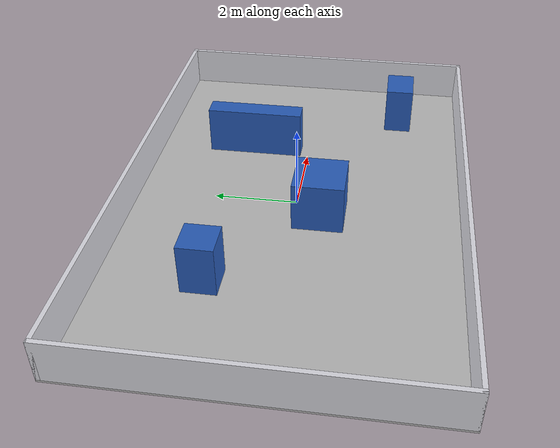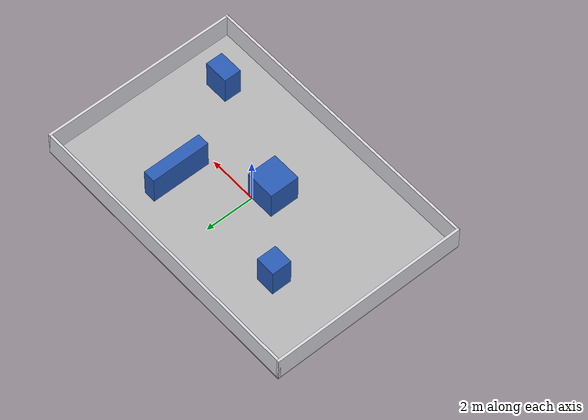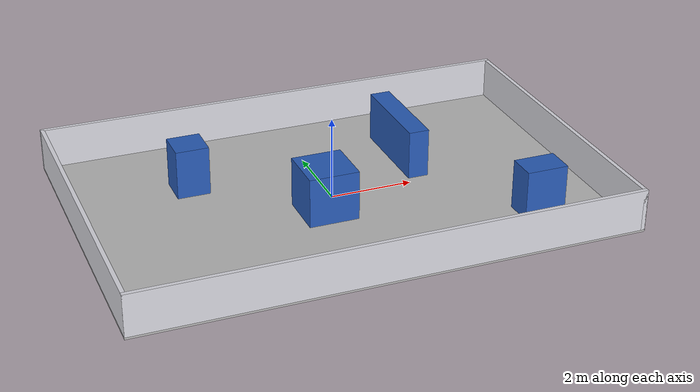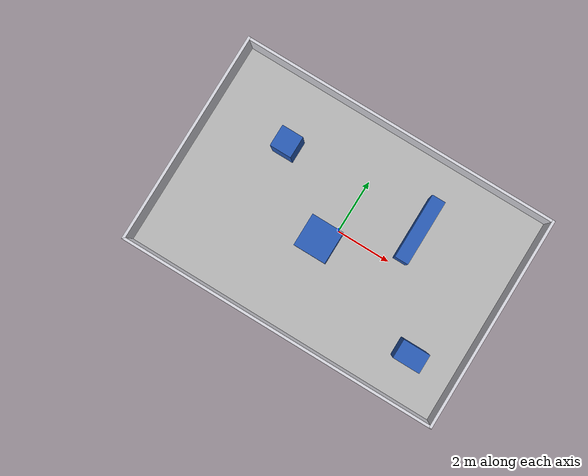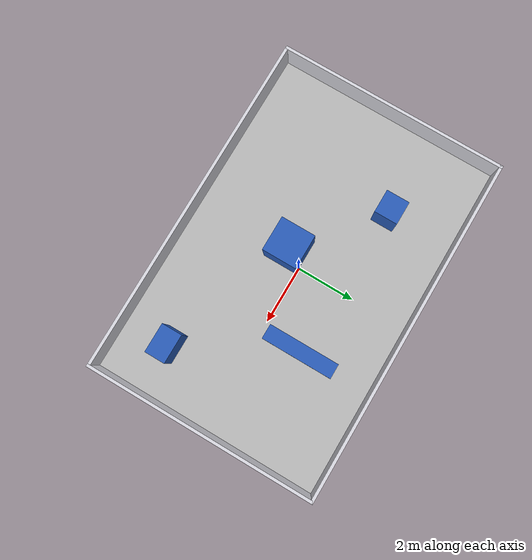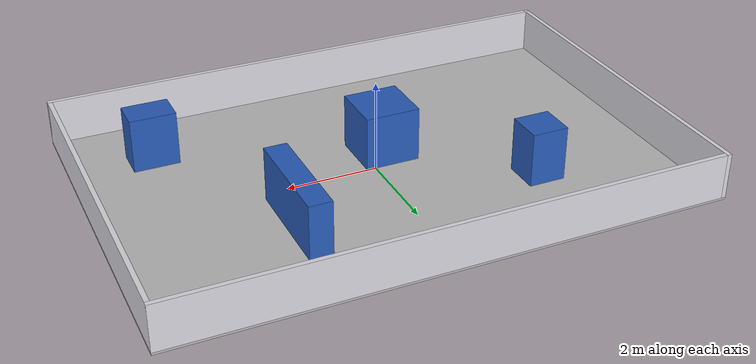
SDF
<?xml version='1.0' encoding='utf-8'?>
<sdf version="1.9">
  <world name="open_arena">
    <physics name="research_physics" type="ode">
      <max_step_size>0.003</max_step_size>
      <real_time_factor>1.0</real_time_factor>
    </physics>
    <plugin filename="gz-sim-physics-system" name="gz::sim::systems::Physics" />
    <plugin filename="gz-sim-user-commands-system" name="gz::sim::systems::UserCommands" />
    <plugin filename="gz-sim-scene-broadcaster-system" name="gz::sim::systems::SceneBroadcaster" />
    <plugin filename="gz-sim-imu-system" name="gz::sim::systems::Imu" />
    <plugin filename="gz-sim-sensors-system" name="gz::sim::systems::Sensors">
      <render_engine>ogre2</render_engine>
    </plugin>
    <scene>
      <ambient>0.8 0.8 0.8 1</ambient>
      <background>0.18 0.22 0.28 1</background>
      <shadows>false</shadows>
      <grid>true</grid>
    </scene>
    <light name="sun" type="directional">
      <pose>0 0 10 0 0 0</pose>
      <diffuse>0.9 0.9 0.9 1</diffuse>
      <specular>0.2 0.2 0.2 1</specular>
      <direction>-0.5 0.2 -1.0</direction>
    </light>
    <model name="open_arena_layout">
      <static>true</static>
      <link name="layout_link">
        <collision name="floor_collision">
          <pose>0 0 -0.025 0 0 0</pose>
          <geometry>
            <box>
              <size>12.0 8.0 0.05</size>
            </box>
          </geometry>
        </collision>
        <visual name="floor_visual">
          <pose>0 0 -0.025 0 0 0</pose>
          <geometry>
            <box>
              <size>12.0 8.0 0.05</size>
            </box>
          </geometry>
          <material>
            <ambient>0.72 0.72 0.72 1</ambient>
            <diffuse>0.72 0.72 0.72 1</diffuse>
          </material>
        </visual>
        <collision name="boundary_north">
          <pose>0.0 3.95 0.5 0 0 0</pose>
          <geometry>
            <box>
              <size>12.0 0.1 1.0</size>
            </box>
          </geometry>
        </collision>
        <visual name="boundary_north_visual">
          <pose>0.0 3.95 0.5 0 0 0</pose>
          <geometry>
            <box>
              <size>12.0 0.1 1.0</size>
            </box>
          </geometry>
          <material>
            <ambient>0.85 0.85 0.88 1</ambient>
            <diffuse>0.85 0.85 0.88 1</diffuse>
          </material>
        </visual>
        <collision name="boundary_south">
          <pose>0.0 -3.95 0.5 0 0 0</pose>
          <geometry>
            <box>
              <size>12.0 0.1 1.0</size>
            </box>
          </geometry>
        </collision>
        <visual name="boundary_south_visual">
          <pose>0.0 -3.95 0.5 0 0 0</pose>
          <geometry>
            <box>
              <size>12.0 0.1 1.0</size>
            </box>
          </geometry>
          <material>
            <ambient>0.85 0.85 0.88 1</ambient>
            <diffuse>0.85 0.85 0.88 1</diffuse>
          </material>
        </visual>
        <collision name="boundary_west">
          <pose>-5.95 0.0 0.5 0 0 0</pose>
          <geometry>
            <box>
              <size>0.1 8.0 1.0</size>
            </box>
          </geometry>
        </collision>
        <visual name="boundary_west_visual">
          <pose>-5.95 0.0 0.5 0 0 0</pose>
          <geometry>
            <box>
              <size>0.1 8.0 1.0</size>
            </box>
          </geometry>
          <material>
            <ambient>0.85 0.85 0.88 1</ambient>
            <diffuse>0.85 0.85 0.88 1</diffuse>
          </material>
        </visual>
        <collision name="boundary_east">
          <pose>5.95 0.0 0.5 0 0 0</pose>
          <geometry>
            <box>
              <size>0.1 8.0 1.0</size>
            </box>
          </geometry>
        </collision>
        <visual name="boundary_east_visual">
          <pose>5.95 0.0 0.5 0 0 0</pose>
          <geometry>
            <box>
              <size>0.1 8.0 1.0</size>
            </box>
          </geometry>
          <material>
            <ambient>0.85 0.85 0.88 1</ambient>
            <diffuse>0.85 0.85 0.88 1</diffuse>
          </material>
        </visual>
        <collision name="pillar_west">
          <pose>-3.0 1.6 0.6 0 0 0</pose>
          <geometry>
            <box>
              <size>0.8 0.8 1.2</size>
            </box>
          </geometry>
        </collision>
        <visual name="pillar_west_visual">
          <pose>-3.0 1.6 0.6 0 0 0</pose>
          <geometry>
            <box>
              <size>0.8 0.8 1.2</size>
            </box>
          </geometry>
          <material>
            <ambient>0.16 0.36 0.72 1</ambient>
            <diffuse>0.16 0.36 0.72 1</diffuse>
          </material>
        </visual>
        <collision name="block_center">
          <pose>-0.4 -0.6 0.6 0 0 0</pose>
          <geometry>
            <box>
              <size>1.2 1.2 1.2</size>
            </box>
          </geometry>
        </collision>
        <visual name="block_center_visual">
          <pose>-0.4 -0.6 0.6 0 0 0</pose>
          <geometry>
            <box>
              <size>1.2 1.2 1.2</size>
            </box>
          </geometry>
          <material>
            <ambient>0.16 0.36 0.72 1</ambient>
            <diffuse>0.16 0.36 0.72 1</diffuse>
          </material>
        </visual>
        <collision name="screen_east">
          <pose>2.3 1.4 0.6 0 0 0</pose>
          <geometry>
            <box>
              <size>0.5 2.4 1.2</size>
            </box>
          </geometry>
        </collision>
        <visual name="screen_east_visual">
          <pose>2.3 1.4 0.6 0 0 0</pose>
          <geometry>
            <box>
              <size>0.5 2.4 1.2</size>
            </box>
          </geometry>
          <material>
            <ambient>0.16 0.36 0.72 1</ambient>
            <diffuse>0.16 0.36 0.72 1</diffuse>
          </material>
        </visual>
        <collision name="block_southeast">
          <pose>4.2 -2.3 0.6 0 0 0</pose>
          <geometry>
            <box>
              <size>1.0 0.7 1.2</size>
            </box>
          </geometry>
        </collision>
        <visual name="block_southeast_visual">
          <pose>4.2 -2.3 0.6 0 0 0</pose>
          <geometry>
            <box>
              <size>1.0 0.7 1.2</size>
            </box>
          </geometry>
          <material>
            <ambient>0.16 0.36 0.72 1</ambient>
            <diffuse>0.16 0.36 0.72 1</diffuse>
          </material>
        </visual>
      </link>
    </model>
  </world>
</sdf>
